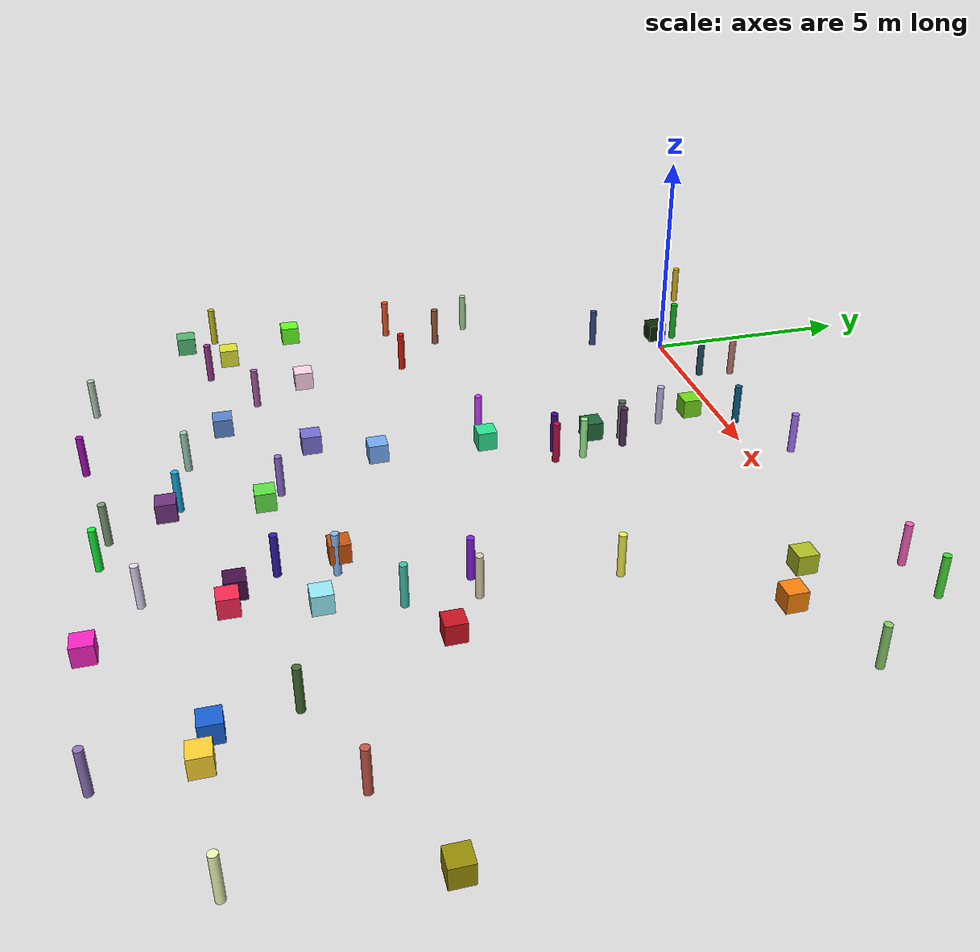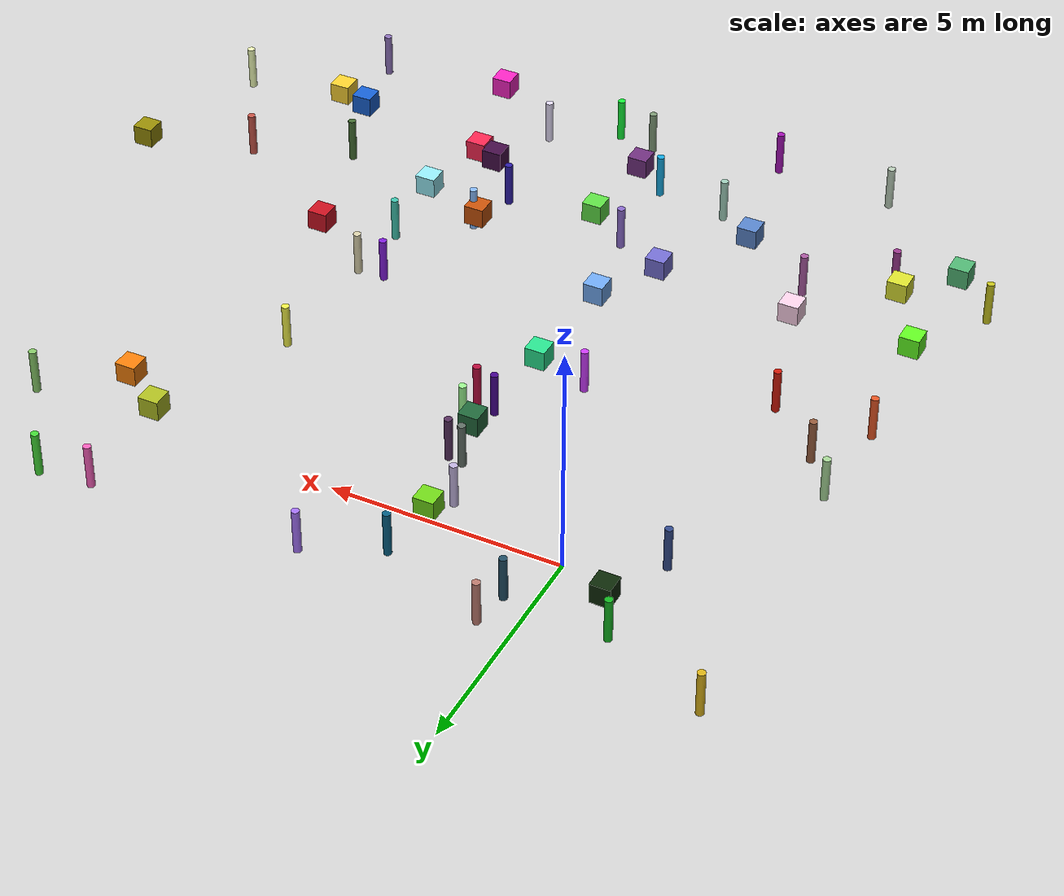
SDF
<sdf version="1.7">
 <world name="warehouse">
  <model name="ground_plane">
   <static>true</static>
   <link name="link">
    <collision name="collision">
     <geometry><plane><normal>0.0 0.0 1</normal><size>1 1</size></plane></geometry>
    </collision>
   </link>
  </model>
  <model name="unit_cylinder_0">
   <static>true</static>
   <pose>4.98 1.39 0 0 0 0</pose>
   <link name="link">
    <collision name="collision">
     <geometry><cylinder><radius>0.085000</radius><length>1.000000</length></cylinder></geometry>
    </collision>
    <visual name="visual">
     <geometry><cylinder><radius>0.085000</radius><length>1.000000</length></cylinder></geometry>
     <material>
      <ambient>0.6472687690180325 0.44911346281101283 0.975330917862481 1</ambient>
      <diffuse>0.6472687690180325 0.44911346281101283 0.975330917862481 1</diffuse>
      <script><uri>file://media/materials/scripts/gazebo.material</uri><name>Gazebo/RandomColor0</name></script>
     </material>
    </visual>
   </link>
  </model>
  <model name="unit_cylinder_2">
   <static>true</static>
   <pose>3.37 -2.32 0 0 0 0</pose>
   <link name="link">
    <collision name="collision">
     <geometry><cylinder><radius>0.085000</radius><length>1.000000</length></cylinder></geometry>
    </collision>
    <visual name="visual">
     <geometry><cylinder><radius>0.085000</radius><length>1.000000</length></cylinder></geometry>
     <material>
      <ambient>0.3746464560616375 0.42663091544570064 0.3947514861165152 1</ambient>
      <diffuse>0.3746464560616375 0.42663091544570064 0.3947514861165152 1</diffuse>
      <script><uri>file://media/materials/scripts/gazebo.material</uri><name>Gazebo/RandomColor2</name></script>
     </material>
    </visual>
   </link>
  </model>
  <model name="unit_box_3">
   <static>true</static>
   <pose>9.51 -0.68 0 0 0 0</pose>
   <link name="link">
    <collision name="collision">
     <geometry><box><size>0.450000 0.450000 0.450000</size></box></geometry>
    </collision>
    <visual name="visual">
     <geometry><box><size>0.450000 0.450000 0.450000</size></box></geometry>
     <material>
      <ambient>0.6892208539074204 0.7462321227307075 0.12971181196509196 1</ambient>
      <diffuse>0.6892208539074204 0.7462321227307075 0.12971181196509196 1</diffuse>
      <script><uri>file://media/materials/scripts/gazebo.material</uri><name>Gazebo/RandomColor3</name></script>
     </material>
    </visual>
   </link>
  </model>
  <model name="unit_cylinder_3">
   <static>true</static>
   <pose>7.04 -13.53 0 0 0 0</pose>
   <link name="link">
    <collision name="collision">
     <geometry><cylinder><radius>0.085000</radius><length>1.000000</length></cylinder></geometry>
    </collision>
    <visual name="visual">
     <geometry><cylinder><radius>0.085000</radius><length>1.000000</length></cylinder></geometry>
     <material>
      <ambient>0.8920071408856468 0.8596903477106197 0.968408697729801 1</ambient>
      <diffuse>0.8920071408856468 0.8596903477106197 0.968408697729801 1</diffuse>
      <script><uri>file://media/materials/scripts/gazebo.material</uri><name>Gazebo/RandomColor3</name></script>
     </material>
    </visual>
   </link>
  </model>
  <model name="unit_box_4">
   <static>true</static>
   <pose>4.58 -10.87 0 0 0 0</pose>
   <link name="link">
    <collision name="collision">
     <geometry><box><size>0.450000 0.450000 0.450000</size></box></geometry>
    </collision>
    <visual name="visual">
     <geometry><box><size>0.450000 0.450000 0.450000</size></box></geometry>
     <material>
      <ambient>0.3702599397598817 0.8748853656224929 0.27414386341138386 1</ambient>
      <diffuse>0.3702599397598817 0.8748853656224929 0.27414386341138386 1</diffuse>
      <script><uri>file://media/materials/scripts/gazebo.material</uri><name>Gazebo/RandomColor4</name></script>
     </material>
    </visual>
   </link>
  </model>
  <model name="unit_cylinder_4">
   <static>true</static>
   <pose>9.58 1.57 0 0 0 0</pose>
   <link name="link">
    <collision name="collision">
     <geometry><cylinder><radius>0.085000</radius><length>1.000000</length></cylinder></geometry>
    </collision>
    <visual name="visual">
     <geometry><cylinder><radius>0.085000</radius><length>1.000000</length></cylinder></geometry>
     <material>
      <ambient>0.9740638241613627 0.37367039531082935 0.7371137244861767 1</ambient>
      <diffuse>0.9740638241613627 0.37367039531082935 0.7371137244861767 1</diffuse>
      <script><uri>file://media/materials/scripts/gazebo.material</uri><name>Gazebo/RandomColor4</name></script>
     </material>
    </visual>
   </link>
  </model>
  <model name="unit_cylinder_5">
   <static>true</static>
   <pose>8.46 -4.13 0 0 0 0</pose>
   <link name="link">
    <collision name="collision">
     <geometry><cylinder><radius>0.085000</radius><length>1.000000</length></cylinder></geometry>
    </collision>
    <visual name="visual">
     <geometry><cylinder><radius>0.085000</radius><length>1.000000</length></cylinder></geometry>
     <material>
      <ambient>0.9387093573292032 0.9439170657203892 0.2815634968002798 1</ambient>
      <diffuse>0.9387093573292032 0.9439170657203892 0.2815634968002798 1</diffuse>
      <script><uri>file://media/materials/scripts/gazebo.material</uri><name>Gazebo/RandomColor5</name></script>
     </material>
    </visual>
   </link>
  </model>
  <model name="unit_cylinder_7">
   <static>true</static>
   <pose>-1.49 -6.75 0 0 0 0</pose>
   <link name="link">
    <collision name="collision">
     <geometry><cylinder><radius>0.085000</radius><length>1.000000</length></cylinder></geometry>
    </collision>
    <visual name="visual">
     <geometry><cylinder><radius>0.085000</radius><length>1.000000</length></cylinder></geometry>
     <material>
      <ambient>0.8189590762095114 0.09994172586716332 0.036182600300354806 1</ambient>
      <diffuse>0.8189590762095114 0.09994172586716332 0.036182600300354806 1</diffuse>
      <script><uri>file://media/materials/scripts/gazebo.material</uri><name>Gazebo/RandomColor7</name></script>
     </material>
    </visual>
   </link>
  </model>
  <model name="unit_cylinder_8">
   <static>true</static>
   <pose>-4.29 -11.51 0 0 0 0</pose>
   <link name="link">
    <collision name="collision">
     <geometry><cylinder><radius>0.085000</radius><length>1.000000</length></cylinder></geometry>
    </collision>
    <visual name="visual">
     <geometry><cylinder><radius>0.085000</radius><length>1.000000</length></cylinder></geometry>
     <material>
      <ambient>0.7776777248018112 0.7632080752826252 0.10930203840896058 1</ambient>
      <diffuse>0.7776777248018112 0.7632080752826252 0.10930203840896058 1</diffuse>
      <script><uri>file://media/materials/scripts/gazebo.material</uri><name>Gazebo/RandomColor8</name></script>
     </material>
    </visual>
   </link>
  </model>
  <model name="unit_box_12">
   <static>true</static>
   <pose>-2.42 -11.19 0 0 0 0</pose>
   <link name="link">
    <collision name="collision">
     <geometry><box><size>0.450000 0.450000 0.450000</size></box></geometry>
    </collision>
    <visual name="visual">
     <geometry><box><size>0.450000 0.450000 0.450000</size></box></geometry>
     <material>
      <ambient>0.8628598329702908 0.8815592572391001 0.18948683787233167 1</ambient>
      <diffuse>0.8628598329702908 0.8815592572391001 0.18948683787233167 1</diffuse>
      <script><uri>file://media/materials/scripts/gazebo.material</uri><name>Gazebo/RandomColor12</name></script>
     </material>
    </visual>
   </link>
  </model>
  <model name="unit_cylinder_14">
   <static>true</static>
   <pose>6.97 -9.67 0 0 0 0</pose>
   <link name="link">
    <collision name="collision">
     <geometry><cylinder><radius>0.085000</radius><length>1.000000</length></cylinder></geometry>
    </collision>
    <visual name="visual">
     <geometry><cylinder><radius>0.085000</radius><length>1.000000</length></cylinder></geometry>
     <material>
      <ambient>0.5327696640421138 0.7274066079611091 0.9815210943056651 1</ambient>
      <diffuse>0.5327696640421138 0.7274066079611091 0.9815210943056651 1</diffuse>
      <script><uri>file://media/materials/scripts/gazebo.material</uri><name>Gazebo/RandomColor14</name></script>
     </material>
    </visual>
   </link>
  </model>
  <model name="unit_cylinder_16">
   <static>true</static>
   <pose>2.94 -1.17 0 0 0 0</pose>
   <link name="link">
    <collision name="collision">
     <geometry><cylinder><radius>0.085000</radius><length>1.000000</length></cylinder></geometry>
    </collision>
    <visual name="visual">
     <geometry><cylinder><radius>0.085000</radius><length>1.000000</length></cylinder></geometry>
     <material>
      <ambient>0.7558042645364538 0.7023735235230681 0.8694856708727956 1</ambient>
      <diffuse>0.7558042645364538 0.7023735235230681 0.8694856708727956 1</diffuse>
      <script><uri>file://media/materials/scripts/gazebo.material</uri><name>Gazebo/RandomColor16</name></script>
     </material>
    </visual>
   </link>
  </model>
  <model name="unit_cylinder_17">
   <static>true</static>
   <pose>3.4 0.67 0 0 0 0</pose>
   <link name="link">
    <collision name="collision">
     <geometry><cylinder><radius>0.085000</radius><length>1.000000</length></cylinder></geometry>
    </collision>
    <visual name="visual">
     <geometry><cylinder><radius>0.085000</radius><length>1.000000</length></cylinder></geometry>
     <material>
      <ambient>0.025559428308082666 0.37222367877323703 0.513266187301278 1</ambient>
      <diffuse>0.025559428308082666 0.37222367877323703 0.513266187301278 1</diffuse>
      <script><uri>file://media/materials/scripts/gazebo.material</uri><name>Gazebo/RandomColor17</name></script>
     </material>
    </visual>
   </link>
  </model>
  <model name="unit_cylinder_20">
   <static>true</static>
   <pose>11.7 -14.37 0 0 0 0</pose>
   <link name="link">
    <collision name="collision">
     <geometry><cylinder><radius>0.085000</radius><length>1.000000</length></cylinder></geometry>
    </collision>
    <visual name="visual">
     <geometry><cylinder><radius>0.085000</radius><length>1.000000</length></cylinder></geometry>
     <material>
      <ambient>0.559423304301949 0.452603501856227 0.7339535909351613 1</ambient>
      <diffuse>0.559423304301949 0.452603501856227 0.7339535909351613 1</diffuse>
      <script><uri>file://media/materials/scripts/gazebo.material</uri><name>Gazebo/RandomColor20</name></script>
     </material>
    </visual>
   </link>
  </model>
  <model name="unit_cylinder_21">
   <static>true</static>
   <pose>-1.41 0.93 0 0 0 0</pose>
   <link name="link">
    <collision name="collision">
     <geometry><cylinder><radius>0.085000</radius><length>1.000000</length></cylinder></geometry>
    </collision>
    <visual name="visual">
     <geometry><cylinder><radius>0.085000</radius><length>1.000000</length></cylinder></geometry>
     <material>
      <ambient>0.07495171647082388 0.7108869150053795 0.1288022748435972 1</ambient>
      <diffuse>0.07495171647082388 0.7108869150053795 0.1288022748435972 1</diffuse>
      <script><uri>file://media/materials/scripts/gazebo.material</uri><name>Gazebo/RandomColor21</name></script>
     </material>
    </visual>
   </link>
  </model>
  <model name="unit_cylinder_22">
   <static>true</static>
   <pose>3.86 -12.69 0 0 0 0</pose>
   <link name="link">
    <collision name="collision">
     <geometry><cylinder><radius>0.085000</radius><length>1.000000</length></cylinder></geometry>
    </collision>
    <visual name="visual">
     <geometry><cylinder><radius>0.085000</radius><length>1.000000</length></cylinder></geometry>
     <material>
      <ambient>0.07566895835759424 0.658932597697532 0.8795636646239717 1</ambient>
      <diffuse>0.07566895835759424 0.658932597697532 0.8795636646239717 1</diffuse>
      <script><uri>file://media/materials/scripts/gazebo.material</uri><name>Gazebo/RandomColor22</name></script>
     </material>
    </visual>
   </link>
  </model>
  <model name="unit_box_24">
   <static>true</static>
   <pose>-3.35 -9.5 0 0 0 0</pose>
   <link name="link">
    <collision name="collision">
     <geometry><box><size>0.450000 0.450000 0.450000</size></box></geometry>
    </collision>
    <visual name="visual">
     <geometry><box><size>0.450000 0.450000 0.450000</size></box></geometry>
     <material>
      <ambient>0.3853448783392829 0.9978339342402089 0.13066771843222946 1</ambient>
      <diffuse>0.3853448783392829 0.9978339342402089 0.13066771843222946 1</diffuse>
      <script><uri>file://media/materials/scripts/gazebo.material</uri><name>Gazebo/RandomColor24</name></script>
     </material>
    </visual>
   </link>
  </model>
  <model name="unit_cylinder_24">
   <static>true</static>
   <pose>-3.56 -6.82 0 0 0 0</pose>
   <link name="link">
    <collision name="collision">
     <geometry><cylinder><radius>0.085000</radius><length>1.000000</length></cylinder></geometry>
    </collision>
    <visual name="visual">
     <geometry><cylinder><radius>0.085000</radius><length>1.000000</length></cylinder></geometry>
     <material>
      <ambient>0.8979513443236309 0.3369754812882023 0.14180600407933364 1</ambient>
      <diffuse>0.8979513443236309 0.3369754812882023 0.14180600407933364 1</diffuse>
      <script><uri>file://media/materials/scripts/gazebo.material</uri><name>Gazebo/RandomColor24</name></script>
     </material>
    </visual>
   </link>
  </model>
  <model name="unit_box_25">
   <static>true</static>
   <pose>3.56 -3.14 0 0 0 0</pose>
   <link name="link">
    <collision name="collision">
     <geometry><box><size>0.450000 0.450000 0.450000</size></box></geometry>
    </collision>
    <visual name="visual">
     <geometry><box><size>0.450000 0.450000 0.450000</size></box></geometry>
     <material>
      <ambient>0.12723923879833288 0.40651373765488397 0.22832273969857164 1</ambient>
      <diffuse>0.12723923879833288 0.40651373765488397 0.22832273969857164 1</diffuse>
      <script><uri>file://media/materials/scripts/gazebo.material</uri><name>Gazebo/RandomColor25</name></script>
     </material>
    </visual>
   </link>
  </model>
  <model name="unit_cylinder_29">
   <static>true</static>
   <pose>14.28 -12.43 0 0 0 0</pose>
   <link name="link">
    <collision name="collision">
     <geometry><cylinder><radius>0.085000</radius><length>1.000000</length></cylinder></geometry>
    </collision>
    <visual name="visual">
     <geometry><cylinder><radius>0.085000</radius><length>1.000000</length></cylinder></geometry>
     <material>
      <ambient>0.9449069678931269 0.9978542921727368 0.7190663589255396 1</ambient>
      <diffuse>0.9449069678931269 0.9978542921727368 0.7190663589255396 1</diffuse>
      <script><uri>file://media/materials/scripts/gazebo.material</uri><name>Gazebo/RandomColor29</name></script>
     </material>
    </visual>
   </link>
  </model>
  <model name="unit_box_31">
   <static>true</static>
   <pose>7.97 -11.87 0 0 0 0</pose>
   <link name="link">
    <collision name="collision">
     <geometry><box><size>0.450000 0.450000 0.450000</size></box></geometry>
    </collision>
    <visual name="visual">
     <geometry><box><size>0.450000 0.450000 0.450000</size></box></geometry>
     <material>
      <ambient>0.9739263839673344 0.15357265241731488 0.3225862336685429 1</ambient>
      <diffuse>0.9739263839673344 0.15357265241731488 0.3225862336685429 1</diffuse>
      <script><uri>file://media/materials/scripts/gazebo.material</uri><name>Gazebo/RandomColor31</name></script>
     </material>
    </visual>
   </link>
  </model>
  <model name="unit_cylinder_31">
   <static>true</static>
   <pose>12.81 -10.0 0 0 0 0</pose>
   <link name="link">
    <collision name="collision">
     <geometry><cylinder><radius>0.085000</radius><length>1.000000</length></cylinder></geometry>
    </collision>
    <visual name="visual">
     <geometry><cylinder><radius>0.085000</radius><length>1.000000</length></cylinder></geometry>
     <material>
      <ambient>0.7773817020315099 0.3339801391378936 0.2866794821118821 1</ambient>
      <diffuse>0.7773817020315099 0.3339801391378936 0.2866794821118821 1</diffuse>
      <script><uri>file://media/materials/scripts/gazebo.material</uri><name>Gazebo/RandomColor31</name></script>
     </material>
    </visual>
   </link>
  </model>
  <model name="unit_box_32">
   <static>true</static>
   <pose>11.88 -12.56 0 0 0 0</pose>
   <link name="link">
    <collision name="collision">
     <geometry><box><size>0.450000 0.450000 0.450000</size></box></geometry>
    </collision>
    <visual name="visual">
     <geometry><box><size>0.450000 0.450000 0.450000</size></box></geometry>
     <material>
      <ambient>0.9889561515364196 0.8230954139467405 0.19053512791781424 1</ambient>
      <diffuse>0.9889561515364196 0.8230954139467405 0.19053512791781424 1</diffuse>
      <script><uri>file://media/materials/scripts/gazebo.material</uri><name>Gazebo/RandomColor32</name></script>
     </material>
    </visual>
   </link>
  </model>
  <model name="unit_box_35">
   <static>true</static>
   <pose>7.48 -11.7 0 0 0 0</pose>
   <link name="link">
    <collision name="collision">
     <geometry><box><size>0.450000 0.450000 0.450000</size></box></geometry>
    </collision>
    <visual name="visual">
     <geometry><box><size>0.450000 0.450000 0.450000</size></box></geometry>
     <material>
      <ambient>0.26925403802783665 0.05446949683767777 0.28263844582294484 1</ambient>
      <diffuse>0.26925403802783665 0.05446949683767777 0.28263844582294484 1</diffuse>
      <script><uri>file://media/materials/scripts/gazebo.material</uri><name>Gazebo/RandomColor35</name></script>
     </material>
    </visual>
   </link>
  </model>
  <model name="unit_box_36">
   <static>true</static>
   <pose>-3.4 -12.25 0 0 0 0</pose>
   <link name="link">
    <collision name="collision">
     <geometry><box><size>0.450000 0.450000 0.450000</size></box></geometry>
    </collision>
    <visual name="visual">
     <geometry><box><size>0.450000 0.450000 0.450000</size></box></geometry>
     <material>
      <ambient>0.31275270385400844 0.7114897631354671 0.4526394075071719 1</ambient>
      <diffuse>0.31275270385400844 0.7114897631354671 0.4526394075071719 1</diffuse>
      <script><uri>file://media/materials/scripts/gazebo.material</uri><name>Gazebo/RandomColor36</name></script>
     </material>
    </visual>
   </link>
  </model>
  <model name="unit_cylinder_36">
   <static>true</static>
   <pose>1.84 -14.73 0 0 0 0</pose>
   <link name="link">
    <collision name="collision">
     <geometry><cylinder><radius>0.085000</radius><length>1.000000</length></cylinder></geometry>
    </collision>
    <visual name="visual">
     <geometry><cylinder><radius>0.085000</radius><length>1.000000</length></cylinder></geometry>
     <material>
      <ambient>0.6389730934124562 0.0664245984168651 0.7069625087031943 1</ambient>
      <diffuse>0.6389730934124562 0.0664245984168651 0.7069625087031943 1</diffuse>
      <script><uri>file://media/materials/scripts/gazebo.material</uri><name>Gazebo/RandomColor36</name></script>
     </material>
    </visual>
   </link>
  </model>
  <model name="unit_cylinder_37">
   <static>true</static>
   <pose>12.25 -0.47 0 0 0 0</pose>
   <link name="link">
    <collision name="collision">
     <geometry><cylinder><radius>0.085000</radius><length>1.000000</length></cylinder></geometry>
    </collision>
    <visual name="visual">
     <geometry><cylinder><radius>0.085000</radius><length>1.000000</length></cylinder></geometry>
     <material>
      <ambient>0.5284189616102083 0.7873779541342035 0.40807931743054016 1</ambient>
      <diffuse>0.5284189616102083 0.7873779541342035 0.40807931743054016 1</diffuse>
      <script><uri>file://media/materials/scripts/gazebo.material</uri><name>Gazebo/RandomColor37</name></script>
     </material>
    </visual>
   </link>
  </model>
  <model name="unit_cylinder_38">
   <static>true</static>
   <pose>3.78 -10.48 0 0 0 0</pose>
   <link name="link">
    <collision name="collision">
     <geometry><cylinder><radius>0.085000</radius><length>1.000000</length></cylinder></geometry>
    </collision>
    <visual name="visual">
     <geometry><cylinder><radius>0.085000</radius><length>1.000000</length></cylinder></geometry>
     <material>
      <ambient>0.5451723090732417 0.41995409695405816 0.8010772038880394 1</ambient>
      <diffuse>0.5451723090732417 0.41995409695405816 0.8010772038880394 1</diffuse>
      <script><uri>file://media/materials/scripts/gazebo.material</uri><name>Gazebo/RandomColor38</name></script>
     </material>
    </visual>
   </link>
  </model>
  <model name="unit_cylinder_41">
   <static>true</static>
   <pose>-3.72 1.92 0 0 0 0</pose>
   <link name="link">
    <collision name="collision">
     <geometry><cylinder><radius>0.085000</radius><length>1.000000</length></cylinder></geometry>
    </collision>
    <visual name="visual">
     <geometry><cylinder><radius>0.085000</radius><length>1.000000</length></cylinder></geometry>
     <material>
      <ambient>0.8590411607024079 0.6989504337620771 0.0960684004316058 1</ambient>
      <diffuse>0.8590411607024079 0.6989504337620771 0.0960684004316058 1</diffuse>
      <script><uri>file://media/materials/scripts/gazebo.material</uri><name>Gazebo/RandomColor41</name></script>
     </material>
    </visual>
   </link>
  </model>
  <model name="unit_box_42">
   <static>true</static>
   <pose>1.19 -11.56 0 0 0 0</pose>
   <link name="link">
    <collision name="collision">
     <geometry><box><size>0.450000 0.450000 0.450000</size></box></geometry>
    </collision>
    <visual name="visual">
     <geometry><box><size>0.450000 0.450000 0.450000</size></box></geometry>
     <material>
      <ambient>0.3450090629096486 0.51932086089509 0.7938256768817771 1</ambient>
      <diffuse>0.3450090629096486 0.51932086089509 0.7938256768817771 1</diffuse>
      <script><uri>file://media/materials/scripts/gazebo.material</uri><name>Gazebo/RandomColor42</name></script>
     </material>
    </visual>
   </link>
  </model>
  <model name="unit_cylinder_43">
   <static>true</static>
   <pose>0.84 0.8 0 0 0 0</pose>
   <link name="link">
    <collision name="collision">
     <geometry><cylinder><radius>0.085000</radius><length>1.000000</length></cylinder></geometry>
    </collision>
    <visual name="visual">
     <geometry><cylinder><radius>0.085000</radius><length>1.000000</length></cylinder></geometry>
     <material>
      <ambient>0.12606855941320871 0.29817582673919396 0.3874054931740356 1</ambient>
      <diffuse>0.12606855941320871 0.29817582673919396 0.3874054931740356 1</diffuse>
      <script><uri>file://media/materials/scripts/gazebo.material</uri><name>Gazebo/RandomColor43</name></script>
     </material>
    </visual>
   </link>
  </model>
  <model name="unit_cylinder_44">
   <static>true</static>
   <pose>0.98 1.62 0 0 0 0</pose>
   <link name="link">
    <collision name="collision">
     <geometry><cylinder><radius>0.085000</radius><length>1.000000</length></cylinder></geometry>
    </collision>
    <visual name="visual">
     <geometry><cylinder><radius>0.085000</radius><length>1.000000</length></cylinder></geometry>
     <material>
      <ambient>0.7324756015716867 0.47599940782172667 0.43100842997060207 1</ambient>
      <diffuse>0.7324756015716867 0.47599940782172667 0.43100842997060207 1</diffuse>
      <script><uri>file://media/materials/scripts/gazebo.material</uri><name>Gazebo/RandomColor44</name></script>
     </material>
    </visual>
   </link>
  </model>
  <model name="unit_box_46">
   <static>true</static>
   <pose>3.34 -5.66 0 0 0 0</pose>
   <link name="link">
    <collision name="collision">
     <geometry><box><size>0.450000 0.450000 0.450000</size></box></geometry>
    </collision>
    <visual name="visual">
     <geometry><box><size>0.450000 0.450000 0.450000</size></box></geometry>
     <material>
      <ambient>0.15922822463701947 0.8854683635928332 0.5572418396216212 1</ambient>
      <diffuse>0.15922822463701947 0.8854683635928332 0.5572418396216212 1</diffuse>
      <script><uri>file://media/materials/scripts/gazebo.material</uri><name>Gazebo/RandomColor46</name></script>
     </material>
    </visual>
   </link>
  </model>
  <model name="unit_cylinder_48">
   <static>true</static>
   <pose>7.8 -7.09 0 0 0 0</pose>
   <link name="link">
    <collision name="collision">
     <geometry><cylinder><radius>0.085000</radius><length>1.000000</length></cylinder></geometry>
    </collision>
    <visual name="visual">
     <geometry><cylinder><radius>0.085000</radius><length>1.000000</length></cylinder></geometry>
     <material>
      <ambient>0.5070474719589453 0.11268144714411854 0.8604140602215716 1</ambient>
      <diffuse>0.5070474719589453 0.11268144714411854 0.8604140602215716 1</diffuse>
      <script><uri>file://media/materials/scripts/gazebo.material</uri><name>Gazebo/RandomColor48</name></script>
     </material>
    </visual>
   </link>
  </model>
  <model name="unit_box_49">
   <static>true</static>
   <pose>9.77 -7.88 0 0 0 0</pose>
   <link name="link">
    <collision name="collision">
     <geometry><box><size>0.450000 0.450000 0.450000</size></box></geometry>
    </collision>
    <visual name="visual">
     <geometry><box><size>0.450000 0.450000 0.450000</size></box></geometry>
     <material>
      <ambient>0.7945272278894306 0.0693450366886591 0.12789258630731115 1</ambient>
      <diffuse>0.7945272278894306 0.0693450366886591 0.12789258630731115 1</diffuse>
      <script><uri>file://media/materials/scripts/gazebo.material</uri><name>Gazebo/RandomColor49</name></script>
     </material>
    </visual>
   </link>
  </model>
  <model name="unit_cylinder_49">
   <static>true</static>
   <pose>-2.75 -5.58 0 0 0 0</pose>
   <link name="link">
    <collision name="collision">
     <geometry><cylinder><radius>0.085000</radius><length>1.000000</length></cylinder></geometry>
    </collision>
    <visual name="visual">
     <geometry><cylinder><radius>0.085000</radius><length>1.000000</length></cylinder></geometry>
     <material>
      <ambient>0.5910124236634519 0.3602831683479393 0.23584309538415194 1</ambient>
      <diffuse>0.5910124236634519 0.3602831683479393 0.23584309538415194 1</diffuse>
      <script><uri>file://media/materials/scripts/gazebo.material</uri><name>Gazebo/RandomColor49</name></script>
     </material>
    </visual>
   </link>
  </model>
  <model name="unit_cylinder_50">
   <static>true</static>
   <pose>-0.43 -10.66 0 0 0 0</pose>
   <link name="link">
    <collision name="collision">
     <geometry><cylinder><radius>0.085000</radius><length>1.000000</length></cylinder></geometry>
    </collision>
    <visual name="visual">
     <geometry><cylinder><radius>0.085000</radius><length>1.000000</length></cylinder></geometry>
     <material>
      <ambient>0.6600917968050454 0.34783369299459 0.625090026766275 1</ambient>
      <diffuse>0.6600917968050454 0.34783369299459 0.625090026766275 1</diffuse>
      <script><uri>file://media/materials/scripts/gazebo.material</uri><name>Gazebo/RandomColor50</name></script>
     </material>
    </visual>
   </link>
  </model>
  <model name="unit_box_53">
   <static>true</static>
   <pose>8.66 -14.48 0 0 0 0</pose>
   <link name="link">
    <collision name="collision">
     <geometry><box><size>0.450000 0.450000 0.450000</size></box></geometry>
    </collision>
    <visual name="visual">
     <geometry><box><size>0.450000 0.450000 0.450000</size></box></geometry>
     <material>
      <ambient>0.9661612447232096 0.14038675026721648 0.7625560151703049 1</ambient>
      <diffuse>0.9661612447232096 0.14038675026721648 0.7625560151703049 1</diffuse>
      <script><uri>file://media/materials/scripts/gazebo.material</uri><name>Gazebo/RandomColor53</name></script>
     </material>
    </visual>
   </link>
  </model>
  <model name="unit_cylinder_54">
   <static>true</static>
   <pose>8.31 -8.54 0 0 0 0</pose>
   <link name="link">
    <collision name="collision">
     <geometry><cylinder><radius>0.085000</radius><length>1.000000</length></cylinder></geometry>
    </collision>
    <visual name="visual">
     <geometry><cylinder><radius>0.085000</radius><length>1.000000</length></cylinder></geometry>
     <material>
      <ambient>0.24332793220736082 0.7633005482217252 0.679680321258859 1</ambient>
      <diffuse>0.24332793220736082 0.7633005482217252 0.679680321258859 1</diffuse>
      <script><uri>file://media/materials/scripts/gazebo.material</uri><name>Gazebo/RandomColor54</name></script>
     </material>
    </visual>
   </link>
  </model>
  <model name="unit_box_55">
   <static>true</static>
   <pose>4.46 -12.94 0 0 0 0</pose>
   <link name="link">
    <collision name="collision">
     <geometry><box><size>0.450000 0.450000 0.450000</size></box></geometry>
    </collision>
    <visual name="visual">
     <geometry><box><size>0.450000 0.450000 0.450000</size></box></geometry>
     <material>
      <ambient>0.43987453397432563 0.18991497719280614 0.4948539807183845 1</ambient>
      <diffuse>0.43987453397432563 0.18991497719280614 0.4948539807183845 1</diffuse>
      <script><uri>file://media/materials/scripts/gazebo.material</uri><name>Gazebo/RandomColor55</name></script>
     </material>
    </visual>
   </link>
  </model>
  <model name="unit_box_57">
   <static>true</static>
   <pose>11.19 -12.36 0 0 0 0</pose>
   <link name="link">
    <collision name="collision">
     <geometry><box><size>0.450000 0.450000 0.450000</size></box></geometry>
    </collision>
    <visual name="visual">
     <geometry><box><size>0.450000 0.450000 0.450000</size></box></geometry>
     <material>
      <ambient>0.08935582060308156 0.38052421736492714 0.8318689642110961 1</ambient>
      <diffuse>0.08935582060308156 0.38052421736492714 0.8318689642110961 1</diffuse>
      <script><uri>file://media/materials/scripts/gazebo.material</uri><name>Gazebo/RandomColor57</name></script>
     </material>
    </visual>
   </link>
  </model>
  <model name="unit_cylinder_58">
   <static>true</static>
   <pose>3.7 -2.38 0 0 0 0</pose>
   <link name="link">
    <collision name="collision">
     <geometry><cylinder><radius>0.085000</radius><length>1.000000</length></cylinder></geometry>
    </collision>
    <visual name="visual">
     <geometry><cylinder><radius>0.085000</radius><length>1.000000</length></cylinder></geometry>
     <material>
      <ambient>0.3339252759898307 0.1822293908716719 0.364341006165098 1</ambient>
      <diffuse>0.3339252759898307 0.1822293908716719 0.364341006165098 1</diffuse>
      <script><uri>file://media/materials/scripts/gazebo.material</uri><name>Gazebo/RandomColor58</name></script>
     </material>
    </visual>
   </link>
  </model>
  <model name="unit_box_59">
   <static>true</static>
   <pose>8.32 -10.14 0 0 0 0</pose>
   <link name="link">
    <collision name="collision">
     <geometry><box><size>0.450000 0.450000 0.450000</size></box></geometry>
    </collision>
    <visual name="visual">
     <geometry><box><size>0.450000 0.450000 0.450000</size></box></geometry>
     <material>
      <ambient>0.5846655011675479 0.9241189407832998 0.9694208688599253 1</ambient>
      <diffuse>0.5846655011675479 0.9241189407832998 0.9694208688599253 1</diffuse>
      <script><uri>file://media/materials/scripts/gazebo.material</uri><name>Gazebo/RandomColor59</name></script>
     </material>
    </visual>
   </link>
  </model>
  <model name="unit_cylinder_59">
   <static>true</static>
   <pose>-1.56 -1.37 0 0 0 0</pose>
   <link name="link">
    <collision name="collision">
     <geometry><cylinder><radius>0.085000</radius><length>1.000000</length></cylinder></geometry>
    </collision>
    <visual name="visual">
     <geometry><cylinder><radius>0.085000</radius><length>1.000000</length></cylinder></geometry>
     <material>
      <ambient>0.19342684039395708 0.28550418229521746 0.5404667651519849 1</ambient>
      <diffuse>0.19342684039395708 0.28550418229521746 0.5404667651519849 1</diffuse>
      <script><uri>file://media/materials/scripts/gazebo.material</uri><name>Gazebo/RandomColor59</name></script>
     </material>
    </visual>
   </link>
  </model>
  <model name="unit_box_62">
   <static>true</static>
   <pose>14.97 -8.99 0 0 0 0</pose>
   <link name="link">
    <collision name="collision">
     <geometry><box><size>0.450000 0.450000 0.450000</size></box></geometry>
    </collision>
    <visual name="visual">
     <geometry><box><size>0.450000 0.450000 0.450000</size></box></geometry>
     <material>
      <ambient>0.5925118558551565 0.5534950857231173 0.024576168853771674 1</ambient>
      <diffuse>0.5925118558551565 0.5534950857231173 0.024576168853771674 1</diffuse>
      <script><uri>file://media/materials/scripts/gazebo.material</uri><name>Gazebo/RandomColor62</name></script>
     </material>
    </visual>
   </link>
  </model>
  <model name="unit_cylinder_62">
   <static>true</static>
   <pose>3.98 -4.13 0 0 0 0</pose>
   <link name="link">
    <collision name="collision">
     <geometry><cylinder><radius>0.085000</radius><length>1.000000</length></cylinder></geometry>
    </collision>
    <visual name="visual">
     <geometry><cylinder><radius>0.085000</radius><length>1.000000</length></cylinder></geometry>
     <material>
      <ambient>0.7193107156143216 0.05002571520171295 0.24062740677119254 1</ambient>
      <diffuse>0.7193107156143216 0.05002571520171295 0.24062740677119254 1</diffuse>
      <script><uri>file://media/materials/scripts/gazebo.material</uri><name>Gazebo/RandomColor62</name></script>
     </material>
    </visual>
   </link>
  </model>
  <model name="unit_cylinder_64">
   <static>true</static>
   <pose>3.95 -3.45 0 0 0 0</pose>
   <link name="link">
    <collision name="collision">
     <geometry><cylinder><radius>0.085000</radius><length>1.000000</length></cylinder></geometry>
    </collision>
    <visual name="visual">
     <geometry><cylinder><radius>0.085000</radius><length>1.000000</length></cylinder></geometry>
     <material>
      <ambient>0.6059535195589366 0.9631334484079399 0.5585888484956351 1</ambient>
      <diffuse>0.6059535195589366 0.9631334484079399 0.5585888484956351 1</diffuse>
      <script><uri>file://media/materials/scripts/gazebo.material</uri><name>Gazebo/RandomColor64</name></script>
     </material>
    </visual>
   </link>
  </model>
  <model name="unit_cylinder_65">
   <static>true</static>
   <pose>10.71 1.71 0 0 0 0</pose>
   <link name="link">
    <collision name="collision">
     <geometry><cylinder><radius>0.085000</radius><length>1.000000</length></cylinder></geometry>
    </collision>
    <visual name="visual">
     <geometry><cylinder><radius>0.085000</radius><length>1.000000</length></cylinder></geometry>
     <material>
      <ambient>0.2676241793789865 0.851578868109229 0.21677855331783447 1</ambient>
      <diffuse>0.2676241793789865 0.851578868109229 0.21677855331783447 1</diffuse>
      <script><uri>file://media/materials/scripts/gazebo.material</uri><name>Gazebo/RandomColor65</name></script>
     </material>
    </visual>
   </link>
  </model>
  <model name="unit_box_67">
   <static>true</static>
   <pose>-0.99 0.22 0 0 0 0</pose>
   <link name="link">
    <collision name="collision">
     <geometry><box><size>0.450000 0.450000 0.450000</size></box></geometry>
    </collision>
    <visual name="visual">
     <geometry><box><size>0.450000 0.450000 0.450000</size></box></geometry>
     <material>
      <ambient>0.05241826594104182 0.16047391560215796 0.03159274153189817 1</ambient>
      <diffuse>0.05241826594104182 0.16047391560215796 0.03159274153189817 1</diffuse>
      <script><uri>file://media/materials/scripts/gazebo.material</uri><name>Gazebo/RandomColor67</name></script>
     </material>
    </visual>
   </link>
  </model>
  <model name="unit_cylinder_67">
   <static>true</static>
   <pose>5.61 -14.35 0 0 0 0</pose>
   <link name="link">
    <collision name="collision">
     <geometry><cylinder><radius>0.085000</radius><length>1.000000</length></cylinder></geometry>
    </collision>
    <visual name="visual">
     <geometry><cylinder><radius>0.085000</radius><length>1.000000</length></cylinder></geometry>
     <material>
      <ambient>0.07717209335459951 0.9461426696813006 0.22250698314175377 1</ambient>
      <diffuse>0.07717209335459951 0.9461426696813006 0.22250698314175377 1</diffuse>
      <script><uri>file://media/materials/scripts/gazebo.material</uri><name>Gazebo/RandomColor67</name></script>
     </material>
    </visual>
   </link>
  </model>
  <model name="unit_cylinder_69">
   <static>true</static>
   <pose>4.74 -14.18 0 0 0 0</pose>
   <link name="link">
    <collision name="collision">
     <geometry><cylinder><radius>0.085000</radius><length>1.000000</length></cylinder></geometry>
    </collision>
    <visual name="visual">
     <geometry><cylinder><radius>0.085000</radius><length>1.000000</length></cylinder></geometry>
     <material>
      <ambient>0.49546093440885586 0.6018832195312583 0.46378165726656095 1</ambient>
      <diffuse>0.49546093440885586 0.6018832195312583 0.46378165726656095 1</diffuse>
      <script><uri>file://media/materials/scripts/gazebo.material</uri><name>Gazebo/RandomColor69</name></script>
     </material>
    </visual>
   </link>
  </model>
  <model name="unit_cylinder_70">
   <static>true</static>
   <pose>-3.43 -4.63 0 0 0 0</pose>
   <link name="link">
    <collision name="collision">
     <geometry><cylinder><radius>0.085000</radius><length>1.000000</length></cylinder></geometry>
    </collision>
    <visual name="visual">
     <geometry><cylinder><radius>0.085000</radius><length>1.000000</length></cylinder></geometry>
     <material>
      <ambient>0.6459317249771837 0.8325634957274592 0.5847587626992403 1</ambient>
      <diffuse>0.6459317249771837 0.8325634957274592 0.5847587626992403 1</diffuse>
      <script><uri>file://media/materials/scripts/gazebo.material</uri><name>Gazebo/RandomColor70</name></script>
     </material>
    </visual>
   </link>
  </model>
  <model name="unit_box_72">
   <static>true</static>
   <pose>-0.68 -9.44 0 0 0 0</pose>
   <link name="link">
    <collision name="collision">
     <geometry><box><size>0.450000 0.450000 0.450000</size></box></geometry>
    </collision>
    <visual name="visual">
     <geometry><box><size>0.450000 0.450000 0.450000</size></box></geometry>
     <material>
      <ambient>0.9998938319219244 0.8261806867545136 0.9144112459177272 1</ambient>
      <diffuse>0.9998938319219244 0.8261806867545136 0.9144112459177272 1</diffuse>
      <script><uri>file://media/materials/scripts/gazebo.material</uri><name>Gazebo/RandomColor72</name></script>
     </material>
    </visual>
   </link>
  </model>
  <model name="unit_cylinder_75">
   <static>true</static>
   <pose>-0.87 -14.57 0 0 0 0</pose>
   <link name="link">
    <collision name="collision">
     <geometry><cylinder><radius>0.085000</radius><length>1.000000</length></cylinder></geometry>
    </collision>
    <visual name="visual">
     <geometry><cylinder><radius>0.085000</radius><length>1.000000</length></cylinder></geometry>
     <material>
      <ambient>0.723393275511935 0.7984095806045495 0.7169434954859926 1</ambient>
      <diffuse>0.723393275511935 0.7984095806045495 0.7169434954859926 1</diffuse>
      <script><uri>file://media/materials/scripts/gazebo.material</uri><name>Gazebo/RandomColor75</name></script>
     </material>
    </visual>
   </link>
  </model>
  <model name="unit_cylinder_77">
   <static>true</static>
   <pose>10.68 -10.84 0 0 0 0</pose>
   <link name="link">
    <collision name="collision">
     <geometry><cylinder><radius>0.085000</radius><length>1.000000</length></cylinder></geometry>
    </collision>
    <visual name="visual">
     <geometry><cylinder><radius>0.085000</radius><length>1.000000</length></cylinder></geometry>
     <material>
      <ambient>0.26262528608924907 0.4245702939900019 0.19221124940185275 1</ambient>
      <diffuse>0.26262528608924907 0.4245702939900019 0.19221124940185275 1</diffuse>
      <script><uri>file://media/materials/scripts/gazebo.material</uri><name>Gazebo/RandomColor77</name></script>
     </material>
    </visual>
   </link>
  </model>
  <model name="unit_cylinder_79">
   <static>true</static>
   <pose>6.71 -10.86 0 0 0 0</pose>
   <link name="link">
    <collision name="collision">
     <geometry><cylinder><radius>0.085000</radius><length>1.000000</length></cylinder></geometry>
    </collision>
    <visual name="visual">
     <geometry><cylinder><radius>0.085000</radius><length>1.000000</length></cylinder></geometry>
     <material>
      <ambient>0.17854621115184754 0.11182500927185945 0.6621052656253853 1</ambient>
      <diffuse>0.17854621115184754 0.11182500927185945 0.6621052656253853 1</diffuse>
      <script><uri>file://media/materials/scripts/gazebo.material</uri><name>Gazebo/RandomColor79</name></script>
     </material>
    </visual>
   </link>
  </model>
  <model name="unit_box_81">
   <static>true</static>
   <pose>10.53 -1.42 0 0 0 0</pose>
   <link name="link">
    <collision name="collision">
     <geometry><box><size>0.450000 0.450000 0.450000</size></box></geometry>
    </collision>
    <visual name="visual">
     <geometry><box><size>0.450000 0.450000 0.450000</size></box></geometry>
     <material>
      <ambient>0.9661797573221583 0.5020017454166177 0.042255271122268345 1</ambient>
      <diffuse>0.9661797573221583 0.5020017454166177 0.042255271122268345 1</diffuse>
      <script><uri>file://media/materials/scripts/gazebo.material</uri><name>Gazebo/RandomColor81</name></script>
     </material>
    </visual>
   </link>
  </model>
  <model name="unit_cylinder_81">
   <static>true</static>
   <pose>2.26 -5.57 0 0 0 0</pose>
   <link name="link">
    <collision name="collision">
     <geometry><cylinder><radius>0.085000</radius><length>1.000000</length></cylinder></geometry>
    </collision>
    <visual name="visual">
     <geometry><cylinder><radius>0.085000</radius><length>1.000000</length></cylinder></geometry>
     <material>
      <ambient>0.8025389457939589 0.23153832958051834 0.9988197823952623 1</ambient>
      <diffuse>0.8025389457939589 0.23153832958051834 0.9988197823952623 1</diffuse>
      <script><uri>file://media/materials/scripts/gazebo.material</uri><name>Gazebo/RandomColor81</name></script>
     </material>
    </visual>
   </link>
  </model>
  <model name="unit_cylinder_83">
   <static>true</static>
   <pose>-2.12 -11.72 0 0 0 0</pose>
   <link name="link">
    <collision name="collision">
     <geometry><cylinder><radius>0.085000</radius><length>1.000000</length></cylinder></geometry>
    </collision>
    <visual name="visual">
     <geometry><cylinder><radius>0.085000</radius><length>1.000000</length></cylinder></geometry>
     <material>
      <ambient>0.601233783985626 0.21783044572752586 0.5505012370095106 1</ambient>
      <diffuse>0.601233783985626 0.21783044572752586 0.5505012370095106 1</diffuse>
      <script><uri>file://media/materials/scripts/gazebo.material</uri><name>Gazebo/RandomColor83</name></script>
     </material>
    </visual>
   </link>
  </model>
  <model name="unit_box_88">
   <static>true</static>
   <pose>6.82 -9.59 0 0 0 0</pose>
   <link name="link">
    <collision name="collision">
     <geometry><box><size>0.450000 0.450000 0.450000</size></box></geometry>
    </collision>
    <visual name="visual">
     <geometry><box><size>0.450000 0.450000 0.450000</size></box></geometry>
     <material>
      <ambient>0.7887120729775517 0.32848377869150613 0.04154205455256221 1</ambient>
      <diffuse>0.7887120729775517 0.32848377869150613 0.04154205455256221 1</diffuse>
      <script><uri>file://media/materials/scripts/gazebo.material</uri><name>Gazebo/RandomColor88</name></script>
     </material>
    </visual>
   </link>
  </model>
  <model name="unit_cylinder_88">
   <static>true</static>
   <pose>2.21 -12.45 0 0 0 0</pose>
   <link name="link">
    <collision name="collision">
     <geometry><cylinder><radius>0.085000</radius><length>1.000000</length></cylinder></geometry>
    </collision>
    <visual name="visual">
     <geometry><cylinder><radius>0.085000</radius><length>1.000000</length></cylinder></geometry>
     <material>
      <ambient>0.6209319639937121 0.8040224433430238 0.7260691027873228 1</ambient>
      <diffuse>0.6209319639937121 0.8040224433430238 0.7260691027873228 1</diffuse>
      <script><uri>file://media/materials/scripts/gazebo.material</uri><name>Gazebo/RandomColor88</name></script>
     </material>
    </visual>
   </link>
  </model>
  <model name="unit_cylinder_89">
   <static>true</static>
   <pose>8.41 -7.06 0 0 0 0</pose>
   <link name="link">
    <collision name="collision">
     <geometry><cylinder><radius>0.085000</radius><length>1.000000</length></cylinder></geometry>
    </collision>
    <visual name="visual">
     <geometry><cylinder><radius>0.085000</radius><length>1.000000</length></cylinder></geometry>
     <material>
      <ambient>0.8563569515850423 0.8214644077580756 0.6725877685313749 1</ambient>
      <diffuse>0.8563569515850423 0.8214644077580756 0.6725877685313749 1</diffuse>
      <script><uri>file://media/materials/scripts/gazebo.material</uri><name>Gazebo/RandomColor89</name></script>
     </material>
    </visual>
   </link>
  </model>
  <model name="unit_box_91">
   <static>true</static>
   <pose>2.48 -9.63 0 0 0 0</pose>
   <link name="link">
    <collision name="collision">
     <geometry><box><size>0.450000 0.450000 0.450000</size></box></geometry>
    </collision>
    <visual name="visual">
     <geometry><box><size>0.450000 0.450000 0.450000</size></box></geometry>
     <material>
      <ambient>0.4565545338268351 0.4341045833562379 0.8261072396189357 1</ambient>
      <diffuse>0.4565545338268351 0.4341045833562379 0.8261072396189357 1</diffuse>
      <script><uri>file://media/materials/scripts/gazebo.material</uri><name>Gazebo/RandomColor91</name></script>
     </material>
    </visual>
   </link>
  </model>
  <model name="unit_box_94">
   <static>true</static>
   <pose>3.12 -0.47 0 0 0 0</pose>
   <link name="link">
    <collision name="collision">
     <geometry><box><size>0.450000 0.450000 0.450000</size></box></geometry>
    </collision>
    <visual name="visual">
     <geometry><box><size>0.450000 0.450000 0.450000</size></box></geometry>
     <material>
      <ambient>0.4420011237905096 0.8456722220083791 0.09347264747973805 1</ambient>
      <diffuse>0.4420011237905096 0.8456722220083791 0.09347264747973805 1</diffuse>
      <script><uri>file://media/materials/scripts/gazebo.material</uri><name>Gazebo/RandomColor94</name></script>
     </material>
    </visual>
   </link>
  </model>
  <model name="unit_box_96">
   <static>true</static>
   <pose>3.25 -8.2 0 0 0 0</pose>
   <link name="link">
    <collision name="collision">
     <geometry><box><size>0.450000 0.450000 0.450000</size></box></geometry>
    </collision>
    <visual name="visual">
     <geometry><box><size>0.450000 0.450000 0.450000</size></box></geometry>
     <material>
      <ambient>0.4412314483375126 0.664999428704421 0.9507248469430741 1</ambient>
      <diffuse>0.4412314483375126 0.664999428704421 0.9507248469430741 1</diffuse>
      <script><uri>file://media/materials/scripts/gazebo.material</uri><name>Gazebo/RandomColor96</name></script>
     </material>
    </visual>
   </link>
  </model>
  <model name="unit_cylinder_98">
   <static>true</static>
   <pose>3.54 -4.05 0 0 0 0</pose>
   <link name="link">
    <collision name="collision">
     <geometry><cylinder><radius>0.085000</radius><length>1.000000</length></cylinder></geometry>
    </collision>
    <visual name="visual">
     <geometry><cylinder><radius>0.085000</radius><length>1.000000</length></cylinder></geometry>
     <material>
      <ambient>0.2732607412401544 0.015524888147620208 0.5580858696213846 1</ambient>
      <diffuse>0.2732607412401544 0.015524888147620208 0.5580858696213846 1</diffuse>
      <script><uri>file://media/materials/scripts/gazebo.material</uri><name>Gazebo/RandomColor98</name></script>
     </material>
    </visual>
   </link>
  </model>
 </world>
</sdf>
